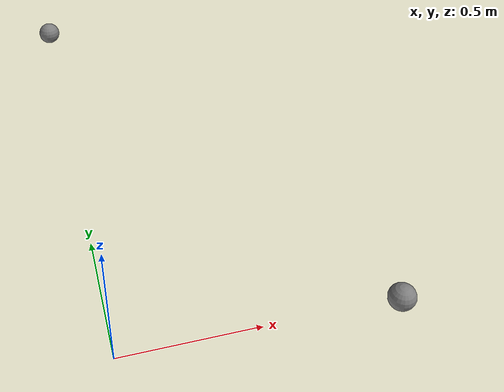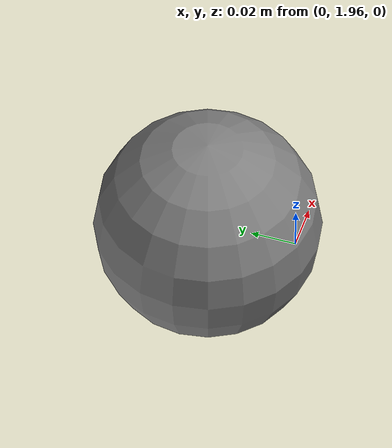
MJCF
<mujoco model="t23">
            <option gravity="0 0 0"/>
            <worldbody>
                <body name="A" pos="1 0 0">
                    <joint name="jA" type="hinge" axis="0 0 1"/>
                    <geom type="sphere" size="0.05" mass="1"/>
                </body>
                <body name="B" pos="0 2 0">
                    <joint type="free"/>
                    <geom type="sphere" size="0.05" mass="1"/>
                    <site name="sB" pos="0 0 0"/>
                </body>
            </worldbody>
            <sensor>
                <framepos site="sB" reftype="xbody" refname="A"/>
            </sensor>
        </mujoco>
